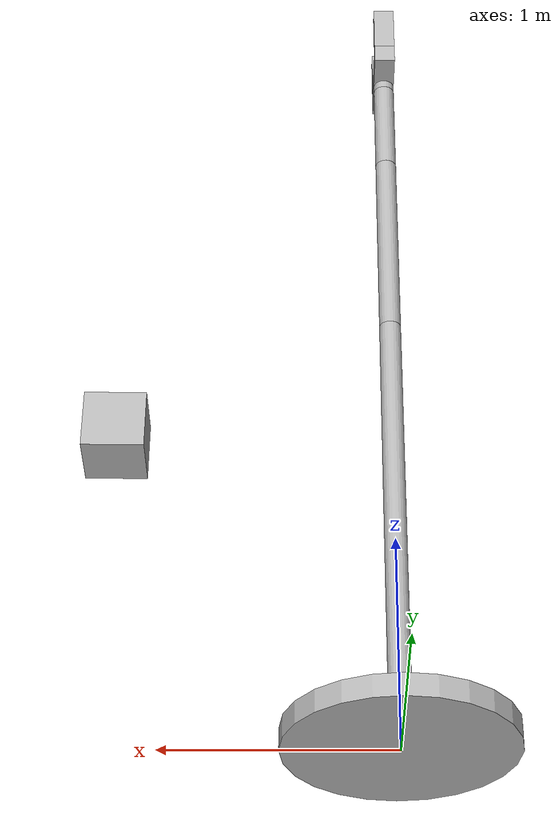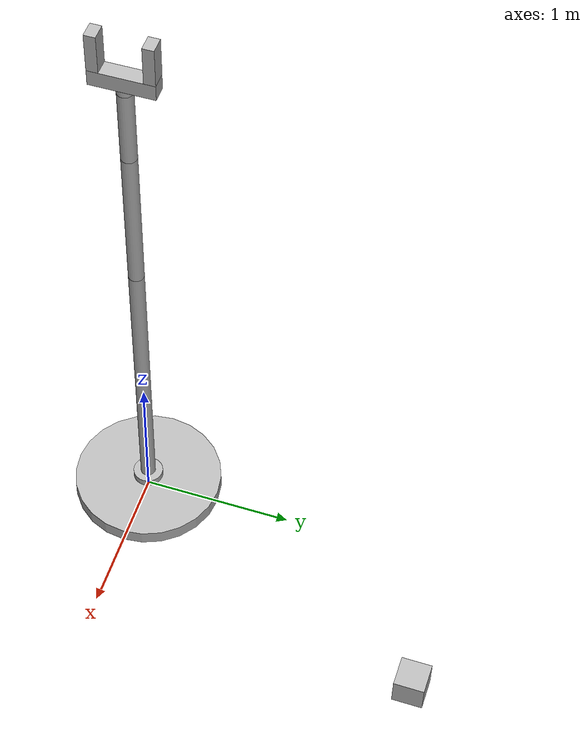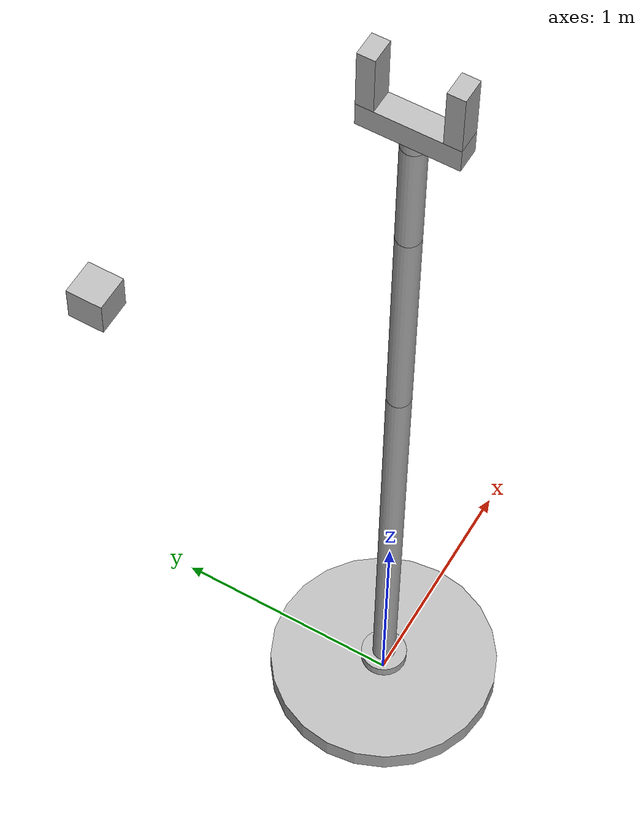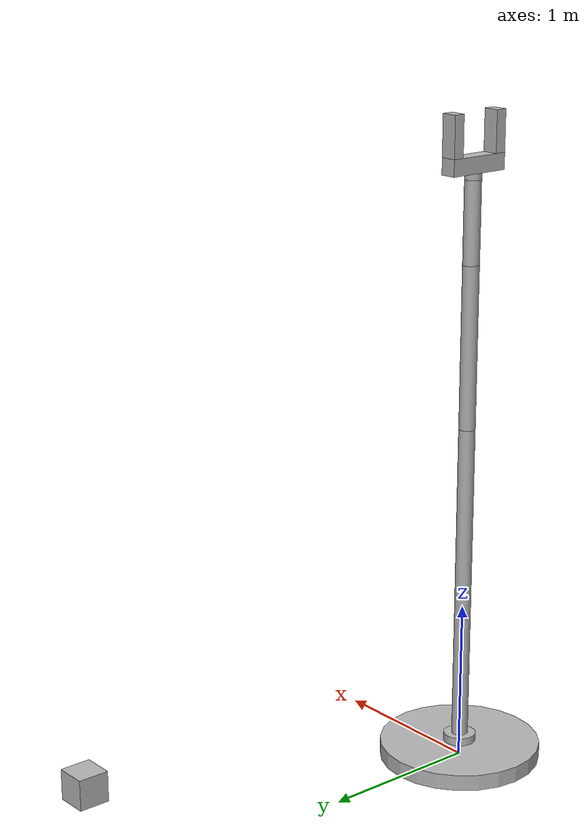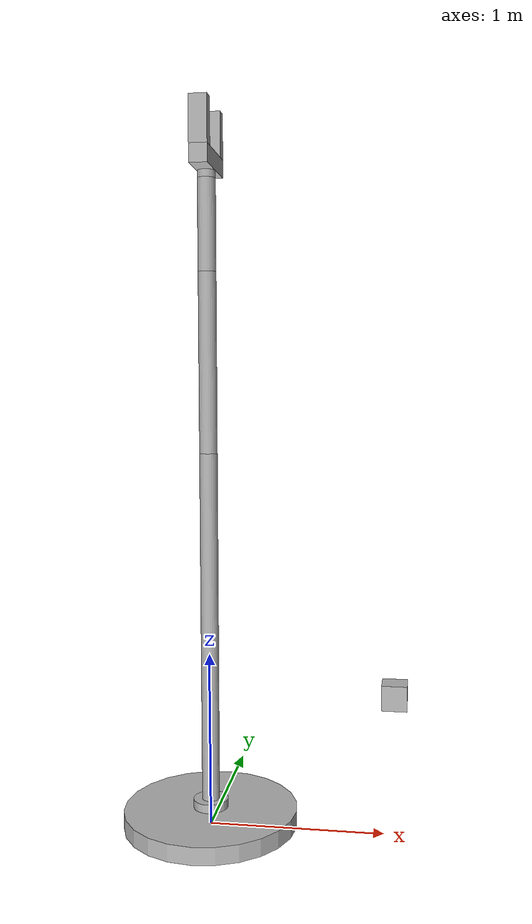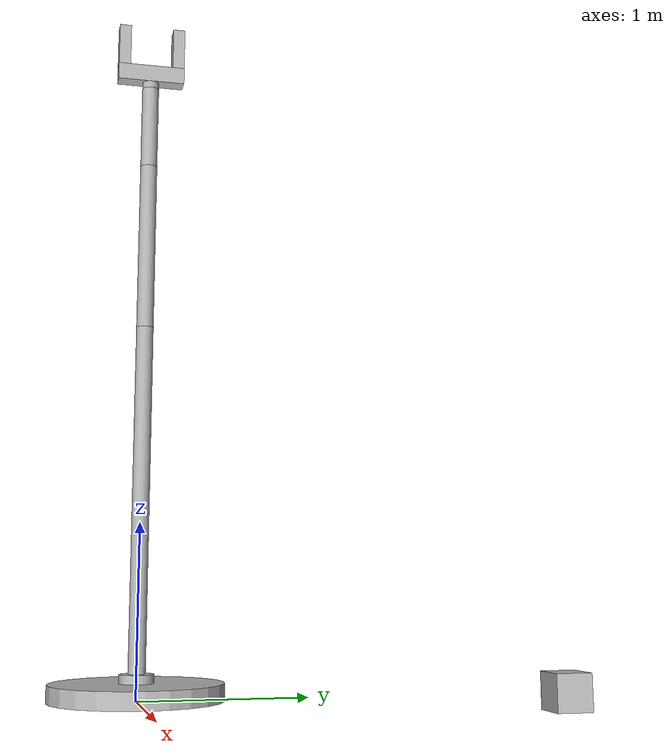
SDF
<?xml version='1.0'?>
<sdf version='1.4'>
    <model name="my_robot">
        <static>true</static>

        <!-- CHASIS -->
        <link name='chassis'>
            <pose>0 0 .05 0 0 0</pose>
            <inertial>
            <mass>50 </mass>
            </inertial>
            <collision name='collision'>
                <geometry>
                    <cylinder>
                        <radius>.5</radius>
                        <length>.1</length>
                    </cylinder>
                </geometry>
            </collision>

            <visual name='visual'>
                <geometry>
                    <cylinder>
                        <radius>.5</radius>
                        <length>.1</length>
                    </cylinder>
                </geometry>
            </visual>
        </link>

        <!-- ARM ONE -->

        <link name='arm1'>
            <pose>0 0 .125 0 0 0</pose>

            <collision name='collision'>
                <geometry>
                    <cylinder>
                        <radius>.1</radius>
                        <length>.05</length>
                    </cylinder>
                </geometry>
            </collision>

            <visual name='visual'>
                <geometry>
                    <cylinder>
                        <radius>.1</radius>
                        <length>.05</length>
                    </cylinder>
                </geometry>
            </visual>
        </link>

        <!-- ARM TWO -->
        <link name='arm2'>
            <pose>0 0 1.15 0 0 0</pose>

            <collision name='collision'>
                <geometry>
                    <cylinder>
                        <radius>.05</radius>
                        <length>2.0</length>
                    </cylinder>
                </geometry>
            </collision>

            <visual name='visual'>
                <geometry>
                    <cylinder>
                        <radius>.05</radius>
                        <length>2.0</length>
                    </cylinder>
                </geometry>
            </visual>
        </link>

        <!-- ARM THREE -->
        <link name='arm3'>
            <pose>0 0 2.65 0 0 0</pose>

            <collision name='collision'>
                <geometry>
                    <cylinder>
                        <radius>.05</radius>
                        <length>1.0</length>
                    </cylinder>
                </geometry>
            </collision>

            <visual name='visual'>
                <geometry>
                    <cylinder>
                        <radius>.05</radius>
                        <length>1.0</length>
                    </cylinder>
                </geometry>
            </visual>
        </link>

        <!-- ARM FOUR -->
        <link name='arm4'>
            <pose>0 0 3.4 0 0 0</pose>

            <collision name='collision'>
                <geometry>
                    <cylinder>
                        <radius>.05</radius>
                        <length>0.5</length>
                    </cylinder>
                </geometry>
            </collision>

            <visual name='visual'>
                <geometry>
                    <cylinder>
                        <radius>.05</radius>
                        <length>0.5</length>
                    </cylinder>
                </geometry>
            </visual>
        </link>
       <link name='arm5'>
            <gravity>0</gravity>
            <pose>0 0 3.67 0 0 0</pose>

            <collision name='collision'>
                <geometry>
                    <cylinder>
                        <radius>.05</radius>
                        <length>0.04</length>
                    </cylinder>
                </geometry>
            </collision>

            <visual name='visual'>
                <geometry>
                    <cylinder>
                        <radius>.05</radius>
                        <length>0.04</length>
                    </cylinder>
                </geometry>
            </visual>
        </link>

        <link name="palm">
            <gravity>0</gravity>
            <pose>0.0 0.0 3.74 0 0 0</pose>
            <inertial>
                <inertia>
                    <ixx>0.01</ixx>
                    <ixy>0</ixy>
                    <ixz>0</ixz>
                    <iyy>0.01</iyy>
                    <iyz>0</iyz>
                    <izz>0.01</izz>
                </inertia>
                <mass>0.05</mass>
            </inertial>
            <collision name="collision">
                <geometry>
                    <box>
                        <size>0.1 0.4 0.1</size>
                    </box>
                </geometry>
            </collision>
            <visual name="visual">
                <geometry>
                    <box>
                        <size>0.1 0.4 0.1</size>
                    </box>
                </geometry>
            </visual>
        </link>

        <link name="left_finger">
            <gravity>0</gravity>
            <pose>0.0 -0.165 3.915 0 0 0</pose>
            <inertial>
                <inertia>
                    <ixx>0.01</ixx>
                    <ixy>0</ixy>
                    <ixz>0</ixz>
                    <iyy>0.01</iyy>
                    <iyz>0</iyz>
                    <izz>0.01</izz>
                </inertia>
                <mass>0.5</mass>
            </inertial>
            <collision name="collision">
                <geometry>
                    <box>
                        <size>0.1 0.07 0.25</size>
                    </box>
                </geometry>

                <surface>
                    <friction>
                        <ode>
                            <mu>1000.0</mu>
                            <mu2>1000.0</mu2>
                            <kp>1000000.0</kp>
                            <kd>100000.0</kd>
                            <slip1>0</slip1>
                            <slip2>0</slip2>
                            <minDepth>0.001</minDepth>
                            <maxVel>0</maxVel>
                        </ode>
                        <torsional>
                            <coefficient>1000.0</coefficient>
                            <patch_radius>0.1</patch_radius>
                            <slip>0</slip>
                        </torsional>
                    </friction>
                </surface>
            </collision>
            <visual name="visual">
                <geometry>
                    <box>
                        <size>0.1 0.07 0.25</size>
                    </box>
                </geometry>
            </visual>
        </link>

        <link name="right_finger">
            <gravity>0</gravity>
            <pose>0.0 0.165 3.915 0 0 0</pose>
            <inertial>
                <inertia>
                    <ixx>0.01</ixx>
                    <ixy>0</ixy>
                    <ixz>0</ixz>
                    <iyy>0.01</iyy>
                    <iyz>0</iyz>
                    <izz>0.01</izz>
                </inertia>
                <mass>0.05</mass>
            </inertial>
            <collision name="collision">
                <geometry>
                    <box>
                        <size>0.1 0.07 0.25</size>
                    </box>
                </geometry>

                <surface>
                    <friction>
                        <ode>
                            <mu>1000.0</mu>
                            <mu2>1000.0</mu2>
                            <kp>1000000.0</kp>
                            <kd>100000.0</kd>
                            <slip1>0</slip1>
                            <slip2>0</slip2>
                            <minDepth>0.001</minDepth>
                            <maxVel>0</maxVel>
                        </ode>
                        <torsional>
                            <coefficient>1000.0</coefficient>
                            <patch_radius>0.1</patch_radius>
                            <slip>0</slip>
                        </torsional>
                    </friction>
                </surface>
            </collision>
            <visual name="visual">
                <geometry>
                    <box>
                        <size>0.1 0.07 0.25</size>
                    </box>
                </geometry>
            </visual>
        </link>

         <!-- box -->
        <model name="box">
            <static>false</static>
            <link name="box">
                <inertial>
                    <mass>0.05</mass>
                    <inertia> <!-- inertias are tricky to compute -->
                    <!-- http://gazebosim.org/tutorials?tut=inertia&cat=build_robot -->
                    <ixx>0.00107568</ixx>       <!-- for a box: ixx = 0.083 * mass * (y*y + z*z) 0.0648 -->
                    <ixy>0.0</ixy>         <!-- for a box: ixy = 0 -->
                    <ixz>0.0</ixz>         <!-- for a box: ixz = 0 -->
                    <iyy>0.00107568</iyy>       <!-- for a box: iyy = 0.083 * mass * (x*x + z*z) -->
                    <iyz>0.0</iyz>         <!-- for a box: iyz = 0 -->
                    <izz>0.00107568</izz>       <!-- for a box: izz = 0.083 * mass * (x*x + y*y) -->
                    </inertia>
                </inertial>

                <pose>1.0 2.15 0.1 0 0 0</pose>

                <collision name="collision">
                    <geometry>
                    <box>
                        <size>0.2 0.2 0.2</size>
                    </box>
                    </geometry>
                    <surface>
                        <friction>
                            <ode>
                                <mu>1000.0</mu>
                                <mu2>1000.0</mu2>
                                <kp>1000000.0</kp>
                                <kd>100000.0</kd>
                                <slip1>0</slip1>
                                <slip2>0</slip2>
                                <minDepth>0.001</minDepth>
                                <maxVel>0</maxVel>
                            </ode>
                            <torsional>
                                <coefficient>1000.0</coefficient>
                                <patch_radius>0.1</patch_radius>
                                <slip>0</slip>
                            </torsional>
                        </friction>
                    </surface>
                </collision>
                <visual name="visual">
                    <geometry>
                    <box>
                        <size>0.2 0.2 0.2</size>
                    </box>
                    </geometry>
                </visual>
            </link>
        </model>

        <joint name="base_arm1" type="revolute">
            <parent>base</parent>
            <child>arm1</child>
            <pose>0 0 -.025 0 0 0</pose>
            <axis>
                <xyz>0 0 1</xyz>
            </axis>
        </joint>

        <joint name="arm1_arm2" type="revolute">
            <parent>arm1</parent>
            <child>arm2</child>
            <pose>0 0 -1 0 0 0</pose>
            <axis>
                <xyz>1 0 0</xyz>
                <dynamics>
                    <damping>1.0</damping>
                    <friction>.3</friction>
                    <limit>
                        <lower>1.0</lower>
                        <upper>1.0</upper>
                        <effort>40</effort>
                        <velocity>1.0</velocity>
                    </limit>
                </dynamics>
            </axis>
        </joint>

        <joint name="arm2_arm3" type="revolute">
            <parent>arm2</parent>
            <child>arm3</child>
            <pose>0 0 -0.5 0 0 0</pose>
            <axis>
                <xyz>1 0 0</xyz>
                <dynamics>
                    <damping>1.0</damping>
                    <friction>.3</friction>
                    <limit>
                        <lower>1.0</lower>
                        <upper>1.0</upper>
                        <effort>40</effort>
                        <velocity>1.0</velocity>
                    </limit>
                </dynamics>
            </axis>
        </joint>

        <joint name="arm3_arm4" type="revolute">
            <parent>arm3</parent>
            <child>arm4</child>
            <pose>0 0 -0.25 0 0 0</pose>
            <axis>
                <xyz>1 0 0</xyz>
                <dynamics>
                    <damping>1.0</damping>
                    <friction>.3</friction>
                    <limit>
                        <lower>1.0</lower>
                        <upper>1.0</upper>
                        <effort>40</effort>
                        <velocity>1.0</velocity>
                    </limit>
                </dynamics>
            </axis>
        </joint>

        <joint name="arm4_arm5" type="revolute">
            <parent>arm4</parent>
            <child>arm5</child>
            <pose>0 0 -0.02 0 0 0</pose>
            <axis>
                <xyz>0 0 1</xyz>
                <dynamics>
                    <damping>1.0</damping>
                    <friction>.3</friction>
                    <limit>
                        <lower>1.0</lower>
                        <upper>1.0</upper>
                        <effort>40</effort>
                        <velocity>0.5</velocity>
                    </limit>
                </dynamics>
            </axis>
        </joint>

        <joint name="arm5_palm" type="revolute">
            <parent>arm5</parent>
            <child>palm</child>
            <pose>0 0 -0.05 0 0 0</pose>
            <axis>
                <xyz>1 0 0</xyz>
                <dynamics>
                    <damping>1.0</damping>
                    <friction>.3</friction>
                    <limit>
                        <lower>1.0</lower>
                        <upper>1.0</upper>
                        <effort>40</effort>
                        <velocity>1.0</velocity>
                    </limit>
                </dynamics>
            </axis>
        </joint>

        <joint name="palm_left_finger" type="revolute">
            <parent>palm</parent>
            <child>left_finger</child>
            <pose>0 0 -0.15 0 0 0</pose>
            <axis>
                <xyz>1 0 0</xyz>
                <dynamics>
                    <damping>1.0</damping>
                    <friction>.3</friction>
                    <limit>
                        <lower>1.0</lower>
                        <upper>1.0</upper>
                        <effort>40</effort>
                        <velocity>1.0</velocity>
                    </limit>
                </dynamics>
            </axis>
        </joint>

        <joint name="palm_right_finger" type="revolute">
            <parent>palm</parent>
            <child>right_finger</child>
            <pose>0 0 -0.15 0 0 0</pose>
            <axis>
                <xyz>1 0 0</xyz>
                <dynamics>
                    <damping>1.0</damping>
                    <friction>.3</friction>
                    <limit>
                        <lower>1.0</lower>
                        <upper>1.0</upper>
                        <effort>40</effort>
                        <velocity>1.0</velocity>
                    </limit>
                </dynamics>
            </axis>
        </joint>

        <plugin name="arm_gazebo" filename="libarm_gazebo.so"/>
        <plugin name="controller" filename="controller.so"/>
    </model>
</sdf>
